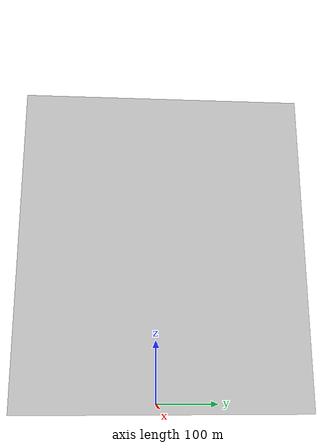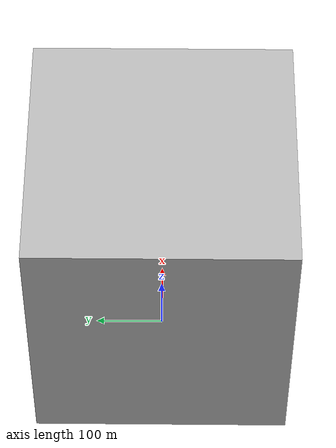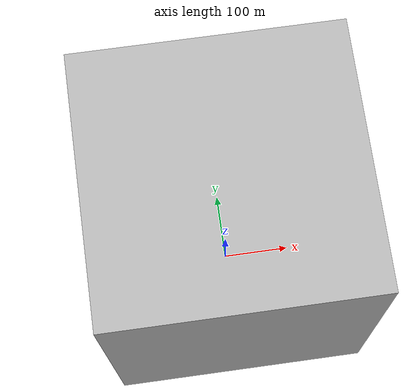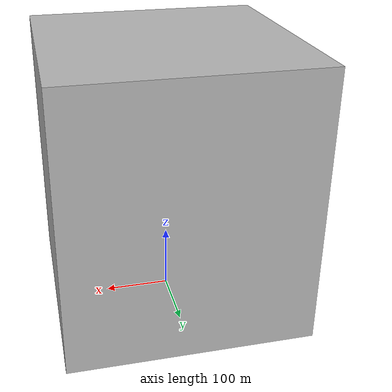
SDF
<?xml version='1.0'?>
<sdf version='1.6'>
	<model name='inverted_box_model'>
		<link name='base_link'>
			<collision name='collision'>
				<geometry>
					<mesh>
						<uri>model://inverted_box/meshes/Inverted_Box.stl</uri>
					</mesh>
				</geometry>
			</collision>
			<visual name='visual'>
				<geometry>
					<mesh>
						<uri>model://inverted_box/meshes/Inverted_Box.stl</uri>
					</mesh>
				</geometry>
			</visual>
        </link>
        <static>0</static>
        <allow_auto_disable>1</allow_auto_disable>
    </model>
</sdf>
